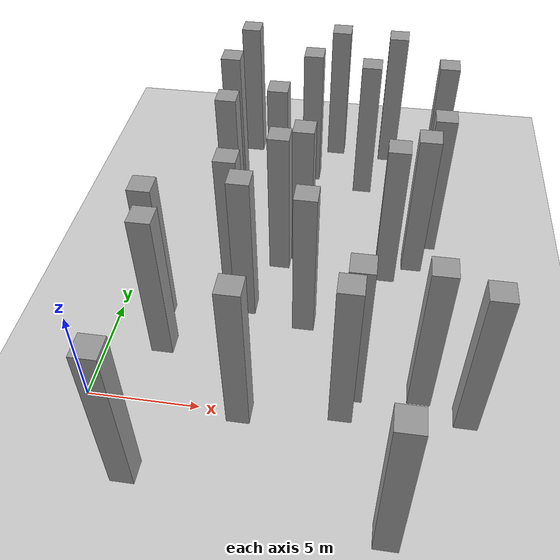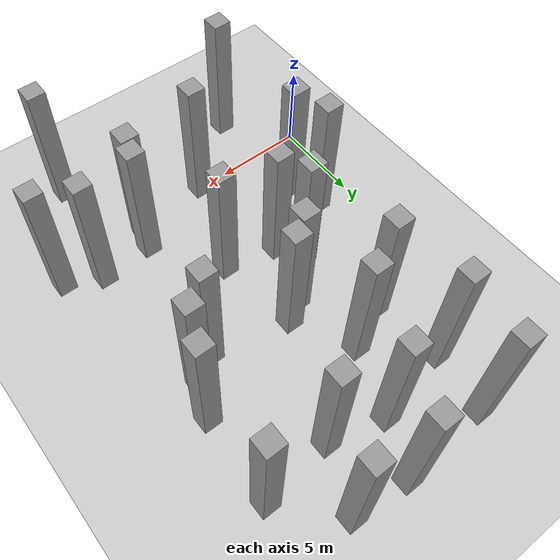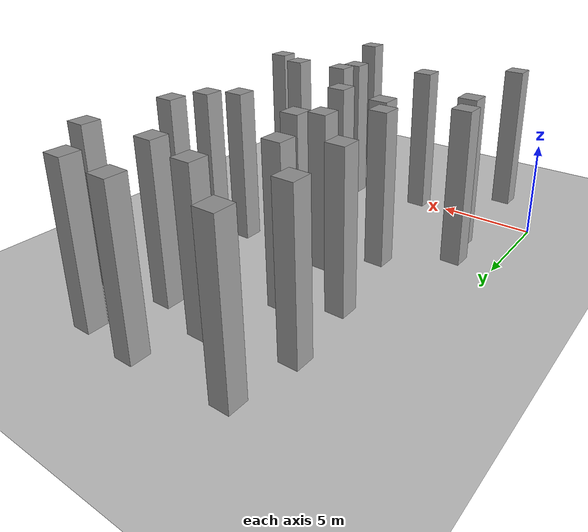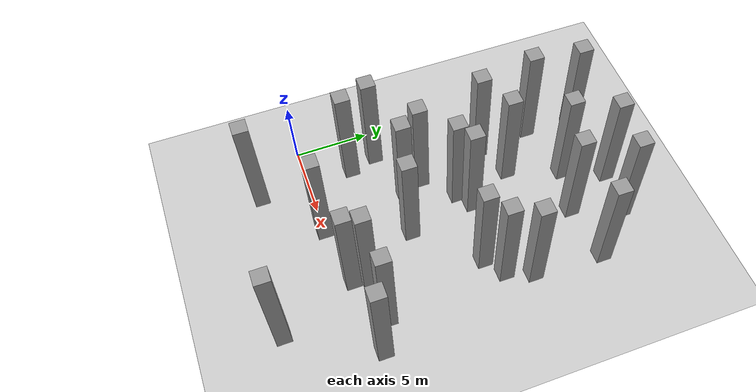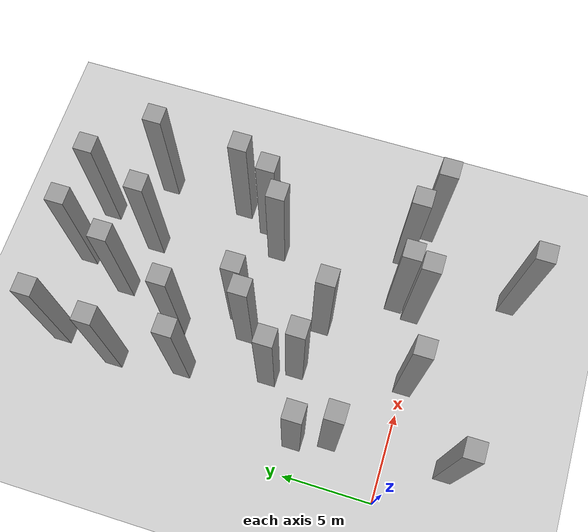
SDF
<sdf version="1.7">
 <world name="default">
  <model name="ground_plane">
   <static>1</static>
   <link name="link">
    <collision name="collision">
     <geometry><plane><normal>0 0 1</normal><size>100 100</size></plane></geometry>
     <surface>
      <contact><collide_bitmask>65535</collide_bitmask></contact>
      <friction><ode><mu>100</mu><mu2>50</mu2></ode></friction>
     </surface>
    </collision>
    <visual name="visual">
     <cast_shadows>0</cast_shadows>
     <geometry><plane><normal>0 0 1</normal><size>100 100</size></plane></geometry>
     <material>
      <script><uri>file://media/materials/scripts/gazebo.material</uri><name>Gazebo/Grey</name></script>
     </material>
    </visual>
   </link>
  </model>
  <model name="unit_box_static19">
   <link name="link">
    <inertial>
     <mass>1</mass>
     <inertia>
      <ixx>0.166667</ixx>
      <ixy>0</ixy>
      <ixz>0</ixz>
      <iyy>0.166667</iyy>
      <iyz>0</iyz>
      <izz>0.166667</izz>
     </inertia>
    </inertial>
    <visual name="visual">
     <geometry><box><size>1 1 8</size></box></geometry>
     <material>
      <script><name>Gazebo/Grey</name><uri>file://media/materials/scripts/gazebo.material</uri></script>
      <shader type="pixel"/>
     </material>
    </visual>
    <collision name="collision">
     <geometry><box><size>1 1 8</size></box></geometry>
     <surface>
      <friction>
       <ode><mu>1</mu><mu2>1</mu2><fdir1>0 0 0</fdir1><slip1>0</slip1><slip2>0</slip2></ode>
       <torsional>
        <coefficient>1</coefficient>
        <patch_radius>0</patch_radius>
        <surface_radius>0</surface_radius>
        <use_patch_radius>1</use_patch_radius>
        <ode><slip>0</slip></ode>
       </torsional>
      </friction>
      <bounce><restitution_coefficient>0</restitution_coefficient><threshold>1e+06</threshold></bounce>
      <contact>
       <collide_without_contact>0</collide_without_contact>
       <collide_without_contact_bitmask>1</collide_without_contact_bitmask>
       <collide_bitmask>1</collide_bitmask>
       <ode>
        <soft_cfm>0</soft_cfm>
        <soft_erp>0.2</soft_erp>
        <kp>1e+13</kp>
        <kd>1</kd>
        <max_vel>0.01</max_vel>
        <min_depth>0</min_depth>
       </ode>
       <bullet>
        <split_impulse>1</split_impulse>
        <split_impulse_penetration_threshold>-0.01</split_impulse_penetration_threshold>
        <soft_cfm>0</soft_cfm>
        <soft_erp>0.2</soft_erp>
        <kp>1e+13</kp>
        <kd>1</kd>
       </bullet>
      </contact>
     </surface>
    </collision>
   </link>
   <static>1</static>
   <pose>16.2659 1.03947 4 0 -0 0</pose>
  </model>
  <model name="unit_box_static27">
   <link name="link">
    <inertial>
     <mass>1</mass>
     <inertia>
      <ixx>0.166667</ixx>
      <ixy>0</ixy>
      <ixz>0</ixz>
      <iyy>0.166667</iyy>
      <iyz>0</iyz>
      <izz>0.166667</izz>
     </inertia>
    </inertial>
    <visual name="visual">
     <geometry><box><size>1 1 8</size></box></geometry>
     <material>
      <script><name>Gazebo/Grey</name><uri>file://media/materials/scripts/gazebo.material</uri></script>
      <shader type="pixel"/>
     </material>
    </visual>
    <collision name="collision">
     <geometry><box><size>1 1 8</size></box></geometry>
     <surface>
      <friction>
       <ode><mu>1</mu><mu2>1</mu2><fdir1>0 0 0</fdir1><slip1>0</slip1><slip2>0</slip2></ode>
       <torsional>
        <coefficient>1</coefficient>
        <patch_radius>0</patch_radius>
        <surface_radius>0</surface_radius>
        <use_patch_radius>1</use_patch_radius>
        <ode><slip>0</slip></ode>
       </torsional>
      </friction>
      <bounce><restitution_coefficient>0</restitution_coefficient><threshold>1e+06</threshold></bounce>
      <contact>
       <collide_without_contact>0</collide_without_contact>
       <collide_without_contact_bitmask>1</collide_without_contact_bitmask>
       <collide_bitmask>1</collide_bitmask>
       <ode>
        <soft_cfm>0</soft_cfm>
        <soft_erp>0.2</soft_erp>
        <kp>1e+13</kp>
        <kd>1</kd>
        <max_vel>0.01</max_vel>
        <min_depth>0</min_depth>
       </ode>
       <bullet>
        <split_impulse>1</split_impulse>
        <split_impulse_penetration_threshold>-0.01</split_impulse_penetration_threshold>
        <soft_cfm>0</soft_cfm>
        <soft_erp>0.2</soft_erp>
        <kp>1e+13</kp>
        <kd>1</kd>
       </bullet>
      </contact>
     </surface>
    </collision>
   </link>
   <static>1</static>
   <pose>6.49172 13.1997 4 0 -0 0</pose>
  </model>
  <model name="unit_box_static51">
   <link name="link">
    <inertial>
     <mass>1</mass>
     <inertia>
      <ixx>0.166667</ixx>
      <ixy>0</ixy>
      <ixz>0</ixz>
      <iyy>0.166667</iyy>
      <iyz>0</iyz>
      <izz>0.166667</izz>
     </inertia>
    </inertial>
    <visual name="visual">
     <geometry><box><size>1 1 8</size></box></geometry>
     <material>
      <script><name>Gazebo/Grey</name><uri>file://media/materials/scripts/gazebo.material</uri></script>
      <shader type="pixel"/>
     </material>
    </visual>
    <collision name="collision">
     <geometry><box><size>1 1 8</size></box></geometry>
     <surface>
      <friction>
       <ode><mu>1</mu><mu2>1</mu2><fdir1>0 0 0</fdir1><slip1>0</slip1><slip2>0</slip2></ode>
       <torsional>
        <coefficient>1</coefficient>
        <patch_radius>0</patch_radius>
        <surface_radius>0</surface_radius>
        <use_patch_radius>1</use_patch_radius>
        <ode><slip>0</slip></ode>
       </torsional>
      </friction>
      <bounce><restitution_coefficient>0</restitution_coefficient><threshold>1e+06</threshold></bounce>
      <contact>
       <collide_without_contact>0</collide_without_contact>
       <collide_without_contact_bitmask>1</collide_without_contact_bitmask>
       <collide_bitmask>1</collide_bitmask>
       <ode>
        <soft_cfm>0</soft_cfm>
        <soft_erp>0.2</soft_erp>
        <kp>1e+13</kp>
        <kd>1</kd>
        <max_vel>0.01</max_vel>
        <min_depth>0</min_depth>
       </ode>
       <bullet>
        <split_impulse>1</split_impulse>
        <split_impulse_penetration_threshold>-0.01</split_impulse_penetration_threshold>
        <soft_cfm>0</soft_cfm>
        <soft_erp>0.2</soft_erp>
        <kp>1e+13</kp>
        <kd>1</kd>
       </bullet>
      </contact>
     </surface>
    </collision>
   </link>
   <static>1</static>
   <pose>12.1846 19.2634 4 0 -0 0</pose>
  </model>
  <model name="unit_box_static53">
   <link name="link">
    <inertial>
     <mass>1</mass>
     <inertia>
      <ixx>0.166667</ixx>
      <ixy>0</ixy>
      <ixz>0</ixz>
      <iyy>0.166667</iyy>
      <iyz>0</iyz>
      <izz>0.166667</izz>
     </inertia>
    </inertial>
    <visual name="visual">
     <geometry><box><size>1 1 8</size></box></geometry>
     <material>
      <script><name>Gazebo/Grey</name><uri>file://media/materials/scripts/gazebo.material</uri></script>
      <shader type="pixel"/>
     </material>
    </visual>
    <collision name="collision">
     <geometry><box><size>1 1 8</size></box></geometry>
     <surface>
      <friction>
       <ode><mu>1</mu><mu2>1</mu2><fdir1>0 0 0</fdir1><slip1>0</slip1><slip2>0</slip2></ode>
       <torsional>
        <coefficient>1</coefficient>
        <patch_radius>0</patch_radius>
        <surface_radius>0</surface_radius>
        <use_patch_radius>1</use_patch_radius>
        <ode><slip>0</slip></ode>
       </torsional>
      </friction>
      <bounce><restitution_coefficient>0</restitution_coefficient><threshold>1e+06</threshold></bounce>
      <contact>
       <collide_without_contact>0</collide_without_contact>
       <collide_without_contact_bitmask>1</collide_without_contact_bitmask>
       <collide_bitmask>1</collide_bitmask>
       <ode>
        <soft_cfm>0</soft_cfm>
        <soft_erp>0.2</soft_erp>
        <kp>1e+13</kp>
        <kd>1</kd>
        <max_vel>0.01</max_vel>
        <min_depth>0</min_depth>
       </ode>
       <bullet>
        <split_impulse>1</split_impulse>
        <split_impulse_penetration_threshold>-0.01</split_impulse_penetration_threshold>
        <soft_cfm>0</soft_cfm>
        <soft_erp>0.2</soft_erp>
        <kp>1e+13</kp>
        <kd>1</kd>
       </bullet>
      </contact>
     </surface>
    </collision>
   </link>
   <static>1</static>
   <pose>5.94114 5.9923 4 0 -0 0</pose>
  </model>
  <model name="unit_box_static59">
   <link name="link">
    <inertial>
     <mass>1</mass>
     <inertia>
      <ixx>0.166667</ixx>
      <ixy>0</ixy>
      <ixz>0</ixz>
      <iyy>0.166667</iyy>
      <iyz>0</iyz>
      <izz>0.166667</izz>
     </inertia>
    </inertial>
    <visual name="visual">
     <geometry><box><size>1 1 8</size></box></geometry>
     <material>
      <script><name>Gazebo/Grey</name><uri>file://media/materials/scripts/gazebo.material</uri></script>
      <shader type="pixel"/>
     </material>
    </visual>
    <collision name="collision">
     <geometry><box><size>1 1 8</size></box></geometry>
     <surface>
      <friction>
       <ode><mu>1</mu><mu2>1</mu2><fdir1>0 0 0</fdir1><slip1>0</slip1><slip2>0</slip2></ode>
       <torsional>
        <coefficient>1</coefficient>
        <patch_radius>0</patch_radius>
        <surface_radius>0</surface_radius>
        <use_patch_radius>1</use_patch_radius>
        <ode><slip>0</slip></ode>
       </torsional>
      </friction>
      <bounce><restitution_coefficient>0</restitution_coefficient><threshold>1e+06</threshold></bounce>
      <contact>
       <collide_without_contact>0</collide_without_contact>
       <collide_without_contact_bitmask>1</collide_without_contact_bitmask>
       <collide_bitmask>1</collide_bitmask>
       <ode>
        <soft_cfm>0</soft_cfm>
        <soft_erp>0.2</soft_erp>
        <kp>1e+13</kp>
        <kd>1</kd>
        <max_vel>0.01</max_vel>
        <min_depth>0</min_depth>
       </ode>
       <bullet>
        <split_impulse>1</split_impulse>
        <split_impulse_penetration_threshold>-0.01</split_impulse_penetration_threshold>
        <soft_cfm>0</soft_cfm>
        <soft_erp>0.2</soft_erp>
        <kp>1e+13</kp>
        <kd>1</kd>
       </bullet>
      </contact>
     </surface>
    </collision>
   </link>
   <static>1</static>
   <pose>11.0233 0.653893 4 0 -0 0</pose>
  </model>
  <model name="unit_box_static73">
   <link name="link">
    <inertial>
     <mass>1</mass>
     <inertia>
      <ixx>0.166667</ixx>
      <ixy>0</ixy>
      <ixz>0</ixz>
      <iyy>0.166667</iyy>
      <iyz>0</iyz>
      <izz>0.166667</izz>
     </inertia>
    </inertial>
    <visual name="visual">
     <geometry><box><size>1 1 8</size></box></geometry>
     <material>
      <script><name>Gazebo/Grey</name><uri>file://media/materials/scripts/gazebo.material</uri></script>
      <shader type="pixel"/>
     </material>
    </visual>
    <collision name="collision">
     <geometry><box><size>1 1 8</size></box></geometry>
     <surface>
      <friction>
       <ode><mu>1</mu><mu2>1</mu2><fdir1>0 0 0</fdir1><slip1>0</slip1><slip2>0</slip2></ode>
       <torsional>
        <coefficient>1</coefficient>
        <patch_radius>0</patch_radius>
        <surface_radius>0</surface_radius>
        <use_patch_radius>1</use_patch_radius>
        <ode><slip>0</slip></ode>
       </torsional>
      </friction>
      <bounce><restitution_coefficient>0</restitution_coefficient><threshold>1e+06</threshold></bounce>
      <contact>
       <collide_without_contact>0</collide_without_contact>
       <collide_without_contact_bitmask>1</collide_without_contact_bitmask>
       <collide_bitmask>1</collide_bitmask>
       <ode>
        <soft_cfm>0</soft_cfm>
        <soft_erp>0.2</soft_erp>
        <kp>1e+13</kp>
        <kd>1</kd>
        <max_vel>0.01</max_vel>
        <min_depth>0</min_depth>
       </ode>
       <bullet>
        <split_impulse>1</split_impulse>
        <split_impulse_penetration_threshold>-0.01</split_impulse_penetration_threshold>
        <soft_cfm>0</soft_cfm>
        <soft_erp>0.2</soft_erp>
        <kp>1e+13</kp>
        <kd>1</kd>
       </bullet>
      </contact>
     </surface>
    </collision>
   </link>
   <static>1</static>
   <pose>14.3034 1.95691 4 0 -0 0</pose>
  </model>
  <model name="unit_box_static78">
   <link name="link">
    <inertial>
     <mass>1</mass>
     <inertia>
      <ixx>0.166667</ixx>
      <ixy>0</ixy>
      <ixz>0</ixz>
      <iyy>0.166667</iyy>
      <iyz>0</iyz>
      <izz>0.166667</izz>
     </inertia>
    </inertial>
    <visual name="visual">
     <geometry><box><size>1 1 8</size></box></geometry>
     <material>
      <script><name>Gazebo/Grey</name><uri>file://media/materials/scripts/gazebo.material</uri></script>
      <shader type="pixel"/>
     </material>
    </visual>
    <collision name="collision">
     <geometry><box><size>1 1 8</size></box></geometry>
     <surface>
      <friction>
       <ode><mu>1</mu><mu2>1</mu2><fdir1>0 0 0</fdir1><slip1>0</slip1><slip2>0</slip2></ode>
       <torsional>
        <coefficient>1</coefficient>
        <patch_radius>0</patch_radius>
        <surface_radius>0</surface_radius>
        <use_patch_radius>1</use_patch_radius>
        <ode><slip>0</slip></ode>
       </torsional>
      </friction>
      <bounce><restitution_coefficient>0</restitution_coefficient><threshold>1e+06</threshold></bounce>
      <contact>
       <collide_without_contact>0</collide_without_contact>
       <collide_without_contact_bitmask>1</collide_without_contact_bitmask>
       <collide_bitmask>1</collide_bitmask>
       <ode>
        <soft_cfm>0</soft_cfm>
        <soft_erp>0.2</soft_erp>
        <kp>1e+13</kp>
        <kd>1</kd>
        <max_vel>0.01</max_vel>
        <min_depth>0</min_depth>
       </ode>
       <bullet>
        <split_impulse>1</split_impulse>
        <split_impulse_penetration_threshold>-0.01</split_impulse_penetration_threshold>
        <soft_cfm>0</soft_cfm>
        <soft_erp>0.2</soft_erp>
        <kp>1e+13</kp>
        <kd>1</kd>
       </bullet>
      </contact>
     </surface>
    </collision>
   </link>
   <static>1</static>
   <pose>4.15709 12.0635 4 0 -0 0</pose>
  </model>
  <model name="unit_box_static81">
   <link name="link">
    <inertial>
     <mass>1</mass>
     <inertia>
      <ixx>0.166667</ixx>
      <ixy>0</ixy>
      <ixz>0</ixz>
      <iyy>0.166667</iyy>
      <iyz>0</iyz>
      <izz>0.166667</izz>
     </inertia>
    </inertial>
    <visual name="visual">
     <geometry><box><size>1 1 8</size></box></geometry>
     <material>
      <script><name>Gazebo/Grey</name><uri>file://media/materials/scripts/gazebo.material</uri></script>
      <shader type="pixel"/>
     </material>
    </visual>
    <collision name="collision">
     <geometry><box><size>1 1 8</size></box></geometry>
     <surface>
      <friction>
       <ode><mu>1</mu><mu2>1</mu2><fdir1>0 0 0</fdir1><slip1>0</slip1><slip2>0</slip2></ode>
       <torsional>
        <coefficient>1</coefficient>
        <patch_radius>0</patch_radius>
        <surface_radius>0</surface_radius>
        <use_patch_radius>1</use_patch_radius>
        <ode><slip>0</slip></ode>
       </torsional>
      </friction>
      <bounce><restitution_coefficient>0</restitution_coefficient><threshold>1e+06</threshold></bounce>
      <contact>
       <collide_without_contact>0</collide_without_contact>
       <collide_without_contact_bitmask>1</collide_without_contact_bitmask>
       <collide_bitmask>1</collide_bitmask>
       <ode>
        <soft_cfm>0</soft_cfm>
        <soft_erp>0.2</soft_erp>
        <kp>1e+13</kp>
        <kd>1</kd>
        <max_vel>0.01</max_vel>
        <min_depth>0</min_depth>
       </ode>
       <bullet>
        <split_impulse>1</split_impulse>
        <split_impulse_penetration_threshold>-0.01</split_impulse_penetration_threshold>
        <soft_cfm>0</soft_cfm>
        <soft_erp>0.2</soft_erp>
        <kp>1e+13</kp>
        <kd>1</kd>
       </bullet>
      </contact>
     </surface>
    </collision>
   </link>
   <static>1</static>
   <pose>6.76678 -0.001473 4 0 -0 0</pose>
  </model>
  <model name="unit_box_static85">
   <link name="link">
    <inertial>
     <mass>1</mass>
     <inertia>
      <ixx>0.166667</ixx>
      <ixy>0</ixy>
      <ixz>0</ixz>
      <iyy>0.166667</iyy>
      <iyz>0</iyz>
      <izz>0.166667</izz>
     </inertia>
    </inertial>
    <visual name="visual">
     <geometry><box><size>1 1 8</size></box></geometry>
     <material>
      <script><name>Gazebo/Grey</name><uri>file://media/materials/scripts/gazebo.material</uri></script>
      <shader type="pixel"/>
     </material>
    </visual>
    <collision name="collision">
     <geometry><box><size>1 1 8</size></box></geometry>
     <surface>
      <friction>
       <ode><mu>1</mu><mu2>1</mu2><fdir1>0 0 0</fdir1><slip1>0</slip1><slip2>0</slip2></ode>
       <torsional>
        <coefficient>1</coefficient>
        <patch_radius>0</patch_radius>
        <surface_radius>0</surface_radius>
        <use_patch_radius>1</use_patch_radius>
        <ode><slip>0</slip></ode>
       </torsional>
      </friction>
      <bounce><restitution_coefficient>0</restitution_coefficient><threshold>1e+06</threshold></bounce>
      <contact>
       <collide_without_contact>0</collide_without_contact>
       <collide_without_contact_bitmask>1</collide_without_contact_bitmask>
       <collide_bitmask>1</collide_bitmask>
       <ode>
        <soft_cfm>0</soft_cfm>
        <soft_erp>0.2</soft_erp>
        <kp>1e+13</kp>
        <kd>1</kd>
        <max_vel>0.01</max_vel>
        <min_depth>0</min_depth>
       </ode>
       <bullet>
        <split_impulse>1</split_impulse>
        <split_impulse_penetration_threshold>-0.01</split_impulse_penetration_threshold>
        <soft_cfm>0</soft_cfm>
        <soft_erp>0.2</soft_erp>
        <kp>1e+13</kp>
        <kd>1</kd>
       </bullet>
      </contact>
     </surface>
    </collision>
   </link>
   <static>1</static>
   <pose>10.9016 16.0346 4 0 -0 0</pose>
  </model>
  <model name="unit_box_static91">
   <link name="link">
    <inertial>
     <mass>1</mass>
     <inertia>
      <ixx>0.166667</ixx>
      <ixy>0</ixy>
      <ixz>0</ixz>
      <iyy>0.166667</iyy>
      <iyz>0</iyz>
      <izz>0.166667</izz>
     </inertia>
    </inertial>
    <visual name="visual">
     <geometry><box><size>1 1 8</size></box></geometry>
     <material>
      <script><name>Gazebo/Grey</name><uri>file://media/materials/scripts/gazebo.material</uri></script>
      <shader type="pixel"/>
     </material>
    </visual>
    <collision name="collision">
     <geometry><box><size>1 1 8</size></box></geometry>
     <surface>
      <friction>
       <ode><mu>1</mu><mu2>1</mu2><fdir1>0 0 0</fdir1><slip1>0</slip1><slip2>0</slip2></ode>
       <torsional>
        <coefficient>1</coefficient>
        <patch_radius>0</patch_radius>
        <surface_radius>0</surface_radius>
        <use_patch_radius>1</use_patch_radius>
        <ode><slip>0</slip></ode>
       </torsional>
      </friction>
      <bounce><restitution_coefficient>0</restitution_coefficient><threshold>1e+06</threshold></bounce>
      <contact>
       <collide_without_contact>0</collide_without_contact>
       <collide_without_contact_bitmask>1</collide_without_contact_bitmask>
       <collide_bitmask>1</collide_bitmask>
       <ode>
        <soft_cfm>0</soft_cfm>
        <soft_erp>0.2</soft_erp>
        <kp>1e+13</kp>
        <kd>1</kd>
        <max_vel>0.01</max_vel>
        <min_depth>0</min_depth>
       </ode>
       <bullet>
        <split_impulse>1</split_impulse>
        <split_impulse_penetration_threshold>-0.01</split_impulse_penetration_threshold>
        <soft_cfm>0</soft_cfm>
        <soft_erp>0.2</soft_erp>
        <kp>1e+13</kp>
        <kd>1</kd>
       </bullet>
      </contact>
     </surface>
    </collision>
   </link>
   <static>1</static>
   <pose>11.3689 1.71268 4 0 -0 0</pose>
  </model>
  <model name="unit_box_static96">
   <link name="link">
    <inertial>
     <mass>1</mass>
     <inertia>
      <ixx>0.166667</ixx>
      <ixy>0</ixy>
      <ixz>0</ixz>
      <iyy>0.166667</iyy>
      <iyz>0</iyz>
      <izz>0.166667</izz>
     </inertia>
    </inertial>
    <visual name="visual">
     <geometry><box><size>1 1 8</size></box></geometry>
     <material>
      <script><name>Gazebo/Grey</name><uri>file://media/materials/scripts/gazebo.material</uri></script>
      <shader type="pixel"/>
     </material>
    </visual>
    <collision name="collision">
     <geometry><box><size>1 1 8</size></box></geometry>
     <surface>
      <friction>
       <ode><mu>1</mu><mu2>1</mu2><fdir1>0 0 0</fdir1><slip1>0</slip1><slip2>0</slip2></ode>
       <torsional>
        <coefficient>1</coefficient>
        <patch_radius>0</patch_radius>
        <surface_radius>0</surface_radius>
        <use_patch_radius>1</use_patch_radius>
        <ode><slip>0</slip></ode>
       </torsional>
      </friction>
      <bounce><restitution_coefficient>0</restitution_coefficient><threshold>1e+06</threshold></bounce>
      <contact>
       <collide_without_contact>0</collide_without_contact>
       <collide_without_contact_bitmask>1</collide_without_contact_bitmask>
       <collide_bitmask>1</collide_bitmask>
       <ode>
        <soft_cfm>0</soft_cfm>
        <soft_erp>0.2</soft_erp>
        <kp>1e+13</kp>
        <kd>1</kd>
        <max_vel>0.01</max_vel>
        <min_depth>0</min_depth>
       </ode>
       <bullet>
        <split_impulse>1</split_impulse>
        <split_impulse_penetration_threshold>-0.01</split_impulse_penetration_threshold>
        <soft_cfm>0</soft_cfm>
        <soft_erp>0.2</soft_erp>
        <kp>1e+13</kp>
        <kd>1</kd>
       </bullet>
      </contact>
     </surface>
    </collision>
   </link>
   <static>1</static>
   <pose>9.07796 19.543 4 0 -0 0</pose>
  </model>
  <model name="unit_box_static97">
   <link name="link">
    <inertial>
     <mass>1</mass>
     <inertia>
      <ixx>0.166667</ixx>
      <ixy>0</ixy>
      <ixz>0</ixz>
      <iyy>0.166667</iyy>
      <iyz>0</iyz>
      <izz>0.166667</izz>
     </inertia>
    </inertial>
    <visual name="visual">
     <geometry><box><size>1 1 8</size></box></geometry>
     <material>
      <script><name>Gazebo/Grey</name><uri>file://media/materials/scripts/gazebo.material</uri></script>
      <shader type="pixel"/>
     </material>
    </visual>
    <collision name="collision">
     <geometry><box><size>1 1 8</size></box></geometry>
     <surface>
      <friction>
       <ode><mu>1</mu><mu2>1</mu2><fdir1>0 0 0</fdir1><slip1>0</slip1><slip2>0</slip2></ode>
       <torsional>
        <coefficient>1</coefficient>
        <patch_radius>0</patch_radius>
        <surface_radius>0</surface_radius>
        <use_patch_radius>1</use_patch_radius>
        <ode><slip>0</slip></ode>
       </torsional>
      </friction>
      <bounce><restitution_coefficient>0</restitution_coefficient><threshold>1e+06</threshold></bounce>
      <contact>
       <collide_without_contact>0</collide_without_contact>
       <collide_without_contact_bitmask>1</collide_without_contact_bitmask>
       <collide_bitmask>1</collide_bitmask>
       <ode>
        <soft_cfm>0</soft_cfm>
        <soft_erp>0.2</soft_erp>
        <kp>1e+13</kp>
        <kd>1</kd>
        <max_vel>0.01</max_vel>
        <min_depth>0</min_depth>
       </ode>
       <bullet>
        <split_impulse>1</split_impulse>
        <split_impulse_penetration_threshold>-0.01</split_impulse_penetration_threshold>
        <soft_cfm>0</soft_cfm>
        <soft_erp>0.2</soft_erp>
        <kp>1e+13</kp>
        <kd>1</kd>
       </bullet>
      </contact>
     </surface>
    </collision>
   </link>
   <static>1</static>
   <pose>5.08949 7.37291 4 0 -0 0</pose>
  </model>
  <model name="unit_box_static98">
   <link name="link">
    <inertial>
     <mass>1</mass>
     <inertia>
      <ixx>0.166667</ixx>
      <ixy>0</ixy>
      <ixz>0</ixz>
      <iyy>0.166667</iyy>
      <iyz>0</iyz>
      <izz>0.166667</izz>
     </inertia>
    </inertial>
    <visual name="visual">
     <geometry><box><size>1 1 8</size></box></geometry>
     <material>
      <script><name>Gazebo/Grey</name><uri>file://media/materials/scripts/gazebo.material</uri></script>
      <shader type="pixel"/>
     </material>
    </visual>
    <collision name="collision">
     <geometry><box><size>1 1 8</size></box></geometry>
     <surface>
      <friction>
       <ode><mu>1</mu><mu2>1</mu2><fdir1>0 0 0</fdir1><slip1>0</slip1><slip2>0</slip2></ode>
       <torsional>
        <coefficient>1</coefficient>
        <patch_radius>0</patch_radius>
        <surface_radius>0</surface_radius>
        <use_patch_radius>1</use_patch_radius>
        <ode><slip>0</slip></ode>
       </torsional>
      </friction>
      <bounce><restitution_coefficient>0</restitution_coefficient><threshold>1e+06</threshold></bounce>
      <contact>
       <collide_without_contact>0</collide_without_contact>
       <collide_without_contact_bitmask>1</collide_without_contact_bitmask>
       <collide_bitmask>1</collide_bitmask>
       <ode>
        <soft_cfm>0</soft_cfm>
        <soft_erp>0.2</soft_erp>
        <kp>1e+13</kp>
        <kd>1</kd>
        <max_vel>0.01</max_vel>
        <min_depth>0</min_depth>
       </ode>
       <bullet>
        <split_impulse>1</split_impulse>
        <split_impulse_penetration_threshold>-0.01</split_impulse_penetration_threshold>
        <soft_cfm>0</soft_cfm>
        <soft_erp>0.2</soft_erp>
        <kp>1e+13</kp>
        <kd>1</kd>
       </bullet>
      </contact>
     </surface>
    </collision>
   </link>
   <static>1</static>
   <pose>13.8326 10.0137 4 0 -0 0</pose>
  </model>
  <model name="unit_box_static101">
   <link name="link">
    <inertial>
     <mass>1</mass>
     <inertia>
      <ixx>0.166667</ixx>
      <ixy>0</ixy>
      <ixz>0</ixz>
      <iyy>0.166667</iyy>
      <iyz>0</iyz>
      <izz>0.166667</izz>
     </inertia>
    </inertial>
    <visual name="visual">
     <geometry><box><size>1 1 8</size></box></geometry>
     <material>
      <script><name>Gazebo/Grey</name><uri>file://media/materials/scripts/gazebo.material</uri></script>
      <shader type="pixel"/>
     </material>
    </visual>
    <collision name="collision">
     <geometry><box><size>1 1 8</size></box></geometry>
     <surface>
      <friction>
       <ode><mu>1</mu><mu2>1</mu2><fdir1>0 0 0</fdir1><slip1>0</slip1><slip2>0</slip2></ode>
       <torsional>
        <coefficient>1</coefficient>
        <patch_radius>0</patch_radius>
        <surface_radius>0</surface_radius>
        <use_patch_radius>1</use_patch_radius>
        <ode><slip>0</slip></ode>
       </torsional>
      </friction>
      <bounce><restitution_coefficient>0</restitution_coefficient><threshold>1e+06</threshold></bounce>
      <contact>
       <collide_without_contact>0</collide_without_contact>
       <collide_without_contact_bitmask>1</collide_without_contact_bitmask>
       <collide_bitmask>1</collide_bitmask>
       <ode>
        <soft_cfm>0</soft_cfm>
        <soft_erp>0.2</soft_erp>
        <kp>1e+13</kp>
        <kd>1</kd>
        <max_vel>0.01</max_vel>
        <min_depth>0</min_depth>
       </ode>
       <bullet>
        <split_impulse>1</split_impulse>
        <split_impulse_penetration_threshold>-0.01</split_impulse_penetration_threshold>
        <soft_cfm>0</soft_cfm>
        <soft_erp>0.2</soft_erp>
        <kp>1e+13</kp>
        <kd>1</kd>
       </bullet>
      </contact>
     </surface>
    </collision>
   </link>
   <static>1</static>
   <pose>2.60868 3.15029 4 0 -0 0</pose>
  </model>
  <model name="unit_box_static104">
   <link name="link">
    <inertial>
     <mass>1</mass>
     <inertia>
      <ixx>0.166667</ixx>
      <ixy>0</ixy>
      <ixz>0</ixz>
      <iyy>0.166667</iyy>
      <iyz>0</iyz>
      <izz>0.166667</izz>
     </inertia>
    </inertial>
    <visual name="visual">
     <geometry><box><size>1 1 8</size></box></geometry>
     <material>
      <script><name>Gazebo/Grey</name><uri>file://media/materials/scripts/gazebo.material</uri></script>
      <shader type="pixel"/>
     </material>
    </visual>
    <collision name="collision">
     <geometry><box><size>1 1 8</size></box></geometry>
     <surface>
      <friction>
       <ode><mu>1</mu><mu2>1</mu2><fdir1>0 0 0</fdir1><slip1>0</slip1><slip2>0</slip2></ode>
       <torsional>
        <coefficient>1</coefficient>
        <patch_radius>0</patch_radius>
        <surface_radius>0</surface_radius>
        <use_patch_radius>1</use_patch_radius>
        <ode><slip>0</slip></ode>
       </torsional>
      </friction>
      <bounce><restitution_coefficient>0</restitution_coefficient><threshold>1e+06</threshold></bounce>
      <contact>
       <collide_without_contact>0</collide_without_contact>
       <collide_without_contact_bitmask>1</collide_without_contact_bitmask>
       <collide_bitmask>1</collide_bitmask>
       <ode>
        <soft_cfm>0</soft_cfm>
        <soft_erp>0.2</soft_erp>
        <kp>1e+13</kp>
        <kd>1</kd>
        <max_vel>0.01</max_vel>
        <min_depth>0</min_depth>
       </ode>
       <bullet>
        <split_impulse>1</split_impulse>
        <split_impulse_penetration_threshold>-0.01</split_impulse_penetration_threshold>
        <soft_cfm>0</soft_cfm>
        <soft_erp>0.2</soft_erp>
        <kp>1e+13</kp>
        <kd>1</kd>
       </bullet>
      </contact>
     </surface>
    </collision>
   </link>
   <static>1</static>
   <pose>13.1653 -4.50829 4 0 -0 0</pose>
  </model>
  <model name="unit_box_static105">
   <link name="link">
    <inertial>
     <mass>1</mass>
     <inertia>
      <ixx>0.166667</ixx>
      <ixy>0</ixy>
      <ixz>0</ixz>
      <iyy>0.166667</iyy>
      <iyz>0</iyz>
      <izz>0.166667</izz>
     </inertia>
    </inertial>
    <visual name="visual">
     <geometry><box><size>1 1 8</size></box></geometry>
     <material>
      <script><name>Gazebo/Grey</name><uri>file://media/materials/scripts/gazebo.material</uri></script>
      <shader type="pixel"/>
     </material>
    </visual>
    <collision name="collision">
     <geometry><box><size>1 1 8</size></box></geometry>
     <surface>
      <friction>
       <ode><mu>1</mu><mu2>1</mu2><fdir1>0 0 0</fdir1><slip1>0</slip1><slip2>0</slip2></ode>
       <torsional>
        <coefficient>1</coefficient>
        <patch_radius>0</patch_radius>
        <surface_radius>0</surface_radius>
        <use_patch_radius>1</use_patch_radius>
        <ode><slip>0</slip></ode>
       </torsional>
      </friction>
      <bounce><restitution_coefficient>0</restitution_coefficient><threshold>1e+06</threshold></bounce>
      <contact>
       <collide_without_contact>0</collide_without_contact>
       <collide_without_contact_bitmask>1</collide_without_contact_bitmask>
       <collide_bitmask>1</collide_bitmask>
       <ode>
        <soft_cfm>0</soft_cfm>
        <soft_erp>0.2</soft_erp>
        <kp>1e+13</kp>
        <kd>1</kd>
        <max_vel>0.01</max_vel>
        <min_depth>0</min_depth>
       </ode>
       <bullet>
        <split_impulse>1</split_impulse>
        <split_impulse_penetration_threshold>-0.01</split_impulse_penetration_threshold>
        <soft_cfm>0</soft_cfm>
        <soft_erp>0.2</soft_erp>
        <kp>1e+13</kp>
        <kd>1</kd>
       </bullet>
      </contact>
     </surface>
    </collision>
   </link>
   <static>1</static>
   <pose>7.12525 9.28684 4 0 -0 0</pose>
  </model>
  <model name="unit_box_static127">
   <link name="link">
    <inertial>
     <mass>1</mass>
     <inertia>
      <ixx>0.166667</ixx>
      <ixy>0</ixy>
      <ixz>0</ixz>
      <iyy>0.166667</iyy>
      <iyz>0</iyz>
      <izz>0.166667</izz>
     </inertia>
    </inertial>
    <visual name="visual">
     <geometry><box><size>1 1 8</size></box></geometry>
     <material>
      <script><name>Gazebo/Grey</name><uri>file://media/materials/scripts/gazebo.material</uri></script>
      <shader type="pixel"/>
     </material>
    </visual>
    <collision name="collision">
     <geometry><box><size>1 1 8</size></box></geometry>
     <surface>
      <friction>
       <ode><mu>1</mu><mu2>1</mu2><fdir1>0 0 0</fdir1><slip1>0</slip1><slip2>0</slip2></ode>
       <torsional>
        <coefficient>1</coefficient>
        <patch_radius>0</patch_radius>
        <surface_radius>0</surface_radius>
        <use_patch_radius>1</use_patch_radius>
        <ode><slip>0</slip></ode>
       </torsional>
      </friction>
      <bounce><restitution_coefficient>0</restitution_coefficient><threshold>1e+06</threshold></bounce>
      <contact>
       <collide_without_contact>0</collide_without_contact>
       <collide_without_contact_bitmask>1</collide_without_contact_bitmask>
       <collide_bitmask>1</collide_bitmask>
       <ode>
        <soft_cfm>0</soft_cfm>
        <soft_erp>0.2</soft_erp>
        <kp>1e+13</kp>
        <kd>1</kd>
        <max_vel>0.01</max_vel>
        <min_depth>0</min_depth>
       </ode>
       <bullet>
        <split_impulse>1</split_impulse>
        <split_impulse_penetration_threshold>-0.01</split_impulse_penetration_threshold>
        <soft_cfm>0</soft_cfm>
        <soft_erp>0.2</soft_erp>
        <kp>1e+13</kp>
        <kd>1</kd>
       </bullet>
      </contact>
     </surface>
    </collision>
   </link>
   <static>1</static>
   <pose>8.17156 9.99618 4 0 -0 0</pose>
  </model>
  <model name="unit_box_static129">
   <link name="link">
    <inertial>
     <mass>1</mass>
     <inertia>
      <ixx>0.166667</ixx>
      <ixy>0</ixy>
      <ixz>0</ixz>
      <iyy>0.166667</iyy>
      <iyz>0</iyz>
      <izz>0.166667</izz>
     </inertia>
    </inertial>
    <visual name="visual">
     <geometry><box><size>1 1 8</size></box></geometry>
     <material>
      <script><name>Gazebo/Grey</name><uri>file://media/materials/scripts/gazebo.material</uri></script>
      <shader type="pixel"/>
     </material>
    </visual>
    <collision name="collision">
     <geometry><box><size>1 1 8</size></box></geometry>
     <surface>
      <friction>
       <ode><mu>1</mu><mu2>1</mu2><fdir1>0 0 0</fdir1><slip1>0</slip1><slip2>0</slip2></ode>
       <torsional>
        <coefficient>1</coefficient>
        <patch_radius>0</patch_radius>
        <surface_radius>0</surface_radius>
        <use_patch_radius>1</use_patch_radius>
        <ode><slip>0</slip></ode>
       </torsional>
      </friction>
      <bounce><restitution_coefficient>0</restitution_coefficient><threshold>1e+06</threshold></bounce>
      <contact>
       <collide_without_contact>0</collide_without_contact>
       <collide_without_contact_bitmask>1</collide_without_contact_bitmask>
       <collide_bitmask>1</collide_bitmask>
       <ode>
        <soft_cfm>0</soft_cfm>
        <soft_erp>0.2</soft_erp>
        <kp>1e+13</kp>
        <kd>1</kd>
        <max_vel>0.01</max_vel>
        <min_depth>0</min_depth>
       </ode>
       <bullet>
        <split_impulse>1</split_impulse>
        <split_impulse_penetration_threshold>-0.01</split_impulse_penetration_threshold>
        <soft_cfm>0</soft_cfm>
        <soft_erp>0.2</soft_erp>
        <kp>1e+13</kp>
        <kd>1</kd>
       </bullet>
      </contact>
     </surface>
    </collision>
   </link>
   <static>1</static>
   <pose>3.62313 15.9289 4 0 -0 0</pose>
  </model>
  <model name="unit_box_static132">
   <link name="link">
    <inertial>
     <mass>1</mass>
     <inertia>
      <ixx>0.166667</ixx>
      <ixy>0</ixy>
      <ixz>0</ixz>
      <iyy>0.166667</iyy>
      <iyz>0</iyz>
      <izz>0.166667</izz>
     </inertia>
    </inertial>
    <visual name="visual">
     <geometry><box><size>1 1 8</size></box></geometry>
     <material>
      <script><name>Gazebo/Grey</name><uri>file://media/materials/scripts/gazebo.material</uri></script>
      <shader type="pixel"/>
     </material>
    </visual>
    <collision name="collision">
     <geometry><box><size>1 1 8</size></box></geometry>
     <surface>
      <friction>
       <ode><mu>1</mu><mu2>1</mu2><fdir1>0 0 0</fdir1><slip1>0</slip1><slip2>0</slip2></ode>
       <torsional>
        <coefficient>1</coefficient>
        <patch_radius>0</patch_radius>
        <surface_radius>0</surface_radius>
        <use_patch_radius>1</use_patch_radius>
        <ode><slip>0</slip></ode>
       </torsional>
      </friction>
      <bounce><restitution_coefficient>0</restitution_coefficient><threshold>1e+06</threshold></bounce>
      <contact>
       <collide_without_contact>0</collide_without_contact>
       <collide_without_contact_bitmask>1</collide_without_contact_bitmask>
       <collide_bitmask>1</collide_bitmask>
       <ode>
        <soft_cfm>0</soft_cfm>
        <soft_erp>0.2</soft_erp>
        <kp>1e+13</kp>
        <kd>1</kd>
        <max_vel>0.01</max_vel>
        <min_depth>0</min_depth>
       </ode>
       <bullet>
        <split_impulse>1</split_impulse>
        <split_impulse_penetration_threshold>-0.01</split_impulse_penetration_threshold>
        <soft_cfm>0</soft_cfm>
        <soft_erp>0.2</soft_erp>
        <kp>1e+13</kp>
        <kd>1</kd>
       </bullet>
      </contact>
     </surface>
    </collision>
   </link>
   <static>1</static>
   <pose>7.8496 16.7908 4 0 -0 0</pose>
  </model>
  <model name="unit_box_static135">
   <link name="link">
    <inertial>
     <mass>1</mass>
     <inertia>
      <ixx>0.166667</ixx>
      <ixy>0</ixy>
      <ixz>0</ixz>
      <iyy>0.166667</iyy>
      <iyz>0</iyz>
      <izz>0.166667</izz>
     </inertia>
    </inertial>
    <visual name="visual">
     <geometry><box><size>1 1 8</size></box></geometry>
     <material>
      <script><name>Gazebo/Grey</name><uri>file://media/materials/scripts/gazebo.material</uri></script>
      <shader type="pixel"/>
     </material>
    </visual>
    <collision name="collision">
     <geometry><box><size>1 1 8</size></box></geometry>
     <surface>
      <friction>
       <ode><mu>1</mu><mu2>1</mu2><fdir1>0 0 0</fdir1><slip1>0</slip1><slip2>0</slip2></ode>
       <torsional>
        <coefficient>1</coefficient>
        <patch_radius>0</patch_radius>
        <surface_radius>0</surface_radius>
        <use_patch_radius>1</use_patch_radius>
        <ode><slip>0</slip></ode>
       </torsional>
      </friction>
      <bounce><restitution_coefficient>0</restitution_coefficient><threshold>1e+06</threshold></bounce>
      <contact>
       <collide_without_contact>0</collide_without_contact>
       <collide_without_contact_bitmask>1</collide_without_contact_bitmask>
       <collide_bitmask>1</collide_bitmask>
       <ode>
        <soft_cfm>0</soft_cfm>
        <soft_erp>0.2</soft_erp>
        <kp>1e+13</kp>
        <kd>1</kd>
        <max_vel>0.01</max_vel>
        <min_depth>0</min_depth>
       </ode>
       <bullet>
        <split_impulse>1</split_impulse>
        <split_impulse_penetration_threshold>-0.01</split_impulse_penetration_threshold>
        <soft_cfm>0</soft_cfm>
        <soft_erp>0.2</soft_erp>
        <kp>1e+13</kp>
        <kd>1</kd>
       </bullet>
      </contact>
     </surface>
    </collision>
   </link>
   <static>1</static>
   <pose>4.10732 19.2168 4 0 -0 0</pose>
  </model>
  <model name="unit_box_static142">
   <link name="link">
    <inertial>
     <mass>1</mass>
     <inertia>
      <ixx>0.166667</ixx>
      <ixy>0</ixy>
      <ixz>0</ixz>
      <iyy>0.166667</iyy>
      <iyz>0</iyz>
      <izz>0.166667</izz>
     </inertia>
    </inertial>
    <visual name="visual">
     <geometry><box><size>1 1 8</size></box></geometry>
     <material>
      <script><name>Gazebo/Grey</name><uri>file://media/materials/scripts/gazebo.material</uri></script>
      <shader type="pixel"/>
     </material>
    </visual>
    <collision name="collision">
     <geometry><box><size>1 1 8</size></box></geometry>
     <surface>
      <friction>
       <ode><mu>1</mu><mu2>1</mu2><fdir1>0 0 0</fdir1><slip1>0</slip1><slip2>0</slip2></ode>
       <torsional>
        <coefficient>1</coefficient>
        <patch_radius>0</patch_radius>
        <surface_radius>0</surface_radius>
        <use_patch_radius>1</use_patch_radius>
        <ode><slip>0</slip></ode>
       </torsional>
      </friction>
      <bounce><restitution_coefficient>0</restitution_coefficient><threshold>1e+06</threshold></bounce>
      <contact>
       <collide_without_contact>0</collide_without_contact>
       <collide_without_contact_bitmask>1</collide_without_contact_bitmask>
       <collide_bitmask>1</collide_bitmask>
       <ode>
        <soft_cfm>0</soft_cfm>
        <soft_erp>0.2</soft_erp>
        <kp>1e+13</kp>
        <kd>1</kd>
        <max_vel>0.01</max_vel>
        <min_depth>0</min_depth>
       </ode>
       <bullet>
        <split_impulse>1</split_impulse>
        <split_impulse_penetration_threshold>-0.01</split_impulse_penetration_threshold>
        <soft_cfm>0</soft_cfm>
        <soft_erp>0.2</soft_erp>
        <kp>1e+13</kp>
        <kd>1</kd>
       </bullet>
      </contact>
     </surface>
    </collision>
   </link>
   <static>1</static>
   <pose>2.05019 5.00396 4 0 -0 0</pose>
  </model>
  <model name="unit_box_static143">
   <link name="link">
    <inertial>
     <mass>1</mass>
     <inertia>
      <ixx>0.166667</ixx>
      <ixy>0</ixy>
      <ixz>0</ixz>
      <iyy>0.166667</iyy>
      <iyz>0</iyz>
      <izz>0.166667</izz>
     </inertia>
    </inertial>
    <visual name="visual">
     <geometry><box><size>1 1 8</size></box></geometry>
     <material>
      <script><name>Gazebo/Grey</name><uri>file://media/materials/scripts/gazebo.material</uri></script>
      <shader type="pixel"/>
     </material>
    </visual>
    <collision name="collision">
     <geometry><box><size>1 1 8</size></box></geometry>
     <surface>
      <friction>
       <ode><mu>1</mu><mu2>1</mu2><fdir1>0 0 0</fdir1><slip1>0</slip1><slip2>0</slip2></ode>
       <torsional>
        <coefficient>1</coefficient>
        <patch_radius>0</patch_radius>
        <surface_radius>0</surface_radius>
        <use_patch_radius>1</use_patch_radius>
        <ode><slip>0</slip></ode>
       </torsional>
      </friction>
      <bounce><restitution_coefficient>0</restitution_coefficient><threshold>1e+06</threshold></bounce>
      <contact>
       <collide_without_contact>0</collide_without_contact>
       <collide_without_contact_bitmask>1</collide_without_contact_bitmask>
       <collide_bitmask>1</collide_bitmask>
       <ode>
        <soft_cfm>0</soft_cfm>
        <soft_erp>0.2</soft_erp>
        <kp>1e+13</kp>
        <kd>1</kd>
        <max_vel>0.01</max_vel>
        <min_depth>0</min_depth>
       </ode>
       <bullet>
        <split_impulse>1</split_impulse>
        <split_impulse_penetration_threshold>-0.01</split_impulse_penetration_threshold>
        <soft_cfm>0</soft_cfm>
        <soft_erp>0.2</soft_erp>
        <kp>1e+13</kp>
        <kd>1</kd>
       </bullet>
      </contact>
     </surface>
    </collision>
   </link>
   <static>1</static>
   <pose>2.76936 -3.29682 4 0 -0 0</pose>
  </model>
  <model name="unit_box_static148">
   <link name="link">
    <inertial>
     <mass>1</mass>
     <inertia>
      <ixx>0.166667</ixx>
      <ixy>0</ixy>
      <ixz>0</ixz>
      <iyy>0.166667</iyy>
      <iyz>0</iyz>
      <izz>0.166667</izz>
     </inertia>
    </inertial>
    <visual name="visual">
     <geometry><box><size>1 1 8</size></box></geometry>
     <material>
      <script><name>Gazebo/Grey</name><uri>file://media/materials/scripts/gazebo.material</uri></script>
      <shader type="pixel"/>
     </material>
    </visual>
    <collision name="collision">
     <geometry><box><size>1 1 8</size></box></geometry>
     <surface>
      <friction>
       <ode><mu>1</mu><mu2>1</mu2><fdir1>0 0 0</fdir1><slip1>0</slip1><slip2>0</slip2></ode>
       <torsional>
        <coefficient>1</coefficient>
        <patch_radius>0</patch_radius>
        <surface_radius>0</surface_radius>
        <use_patch_radius>1</use_patch_radius>
        <ode><slip>0</slip></ode>
       </torsional>
      </friction>
      <bounce><restitution_coefficient>0</restitution_coefficient><threshold>1e+06</threshold></bounce>
      <contact>
       <collide_without_contact>0</collide_without_contact>
       <collide_without_contact_bitmask>1</collide_without_contact_bitmask>
       <collide_bitmask>1</collide_bitmask>
       <ode>
        <soft_cfm>0</soft_cfm>
        <soft_erp>0.2</soft_erp>
        <kp>1e+13</kp>
        <kd>1</kd>
        <max_vel>0.01</max_vel>
        <min_depth>0</min_depth>
       </ode>
       <bullet>
        <split_impulse>1</split_impulse>
        <split_impulse_penetration_threshold>-0.01</split_impulse_penetration_threshold>
        <soft_cfm>0</soft_cfm>
        <soft_erp>0.2</soft_erp>
        <kp>1e+13</kp>
        <kd>1</kd>
       </bullet>
      </contact>
     </surface>
    </collision>
   </link>
   <static>1</static>
   <pose>12.4943 9.07204 4 0 -0 0</pose>
  </model>
  <model name="unit_box_static149">
   <link name="link">
    <inertial>
     <mass>1</mass>
     <inertia>
      <ixx>0.166667</ixx>
      <ixy>0</ixy>
      <ixz>0</ixz>
      <iyy>0.166667</iyy>
      <iyz>0</iyz>
      <izz>0.166667</izz>
     </inertia>
    </inertial>
    <visual name="visual">
     <geometry><box><size>1 1 8</size></box></geometry>
     <material>
      <script><name>Gazebo/Grey</name><uri>file://media/materials/scripts/gazebo.material</uri></script>
      <shader type="pixel"/>
     </material>
    </visual>
    <collision name="collision">
     <geometry><box><size>1 1 8</size></box></geometry>
     <surface>
      <friction>
       <ode><mu>1</mu><mu2>1</mu2><fdir1>0 0 0</fdir1><slip1>0</slip1><slip2>0</slip2></ode>
       <torsional>
        <coefficient>1</coefficient>
        <patch_radius>0</patch_radius>
        <surface_radius>0</surface_radius>
        <use_patch_radius>1</use_patch_radius>
        <ode><slip>0</slip></ode>
       </torsional>
      </friction>
      <bounce><restitution_coefficient>0</restitution_coefficient><threshold>1e+06</threshold></bounce>
      <contact>
       <collide_without_contact>0</collide_without_contact>
       <collide_without_contact_bitmask>1</collide_without_contact_bitmask>
       <collide_bitmask>1</collide_bitmask>
       <ode>
        <soft_cfm>0</soft_cfm>
        <soft_erp>0.2</soft_erp>
        <kp>1e+13</kp>
        <kd>1</kd>
        <max_vel>0.01</max_vel>
        <min_depth>0</min_depth>
       </ode>
       <bullet>
        <split_impulse>1</split_impulse>
        <split_impulse_penetration_threshold>-0.01</split_impulse_penetration_threshold>
        <soft_cfm>0</soft_cfm>
        <soft_erp>0.2</soft_erp>
        <kp>1e+13</kp>
        <kd>1</kd>
       </bullet>
      </contact>
     </surface>
    </collision>
   </link>
   <static>1</static>
   <pose>8.84318 5.37361 4 0 -0 0</pose>
  </model>
  <model name="unit_box_static164">
   <link name="link">
    <inertial>
     <mass>1</mass>
     <inertia>
      <ixx>0.166667</ixx>
      <ixy>0</ixy>
      <ixz>0</ixz>
      <iyy>0.166667</iyy>
      <iyz>0</iyz>
      <izz>0.166667</izz>
     </inertia>
    </inertial>
    <visual name="visual">
     <geometry><box><size>1 1 8</size></box></geometry>
     <material>
      <script><name>Gazebo/Grey</name><uri>file://media/materials/scripts/gazebo.material</uri></script>
      <shader type="pixel"/>
     </material>
    </visual>
    <collision name="collision">
     <geometry><box><size>1 1 8</size></box></geometry>
     <surface>
      <friction>
       <ode><mu>1</mu><mu2>1</mu2><fdir1>0 0 0</fdir1><slip1>0</slip1><slip2>0</slip2></ode>
       <torsional>
        <coefficient>1</coefficient>
        <patch_radius>0</patch_radius>
        <surface_radius>0</surface_radius>
        <use_patch_radius>1</use_patch_radius>
        <ode><slip>0</slip></ode>
       </torsional>
      </friction>
      <bounce><restitution_coefficient>0</restitution_coefficient><threshold>1e+06</threshold></bounce>
      <contact>
       <collide_without_contact>0</collide_without_contact>
       <collide_without_contact_bitmask>1</collide_without_contact_bitmask>
       <collide_bitmask>1</collide_bitmask>
       <ode>
        <soft_cfm>0</soft_cfm>
        <soft_erp>0.2</soft_erp>
        <kp>1e+13</kp>
        <kd>1</kd>
        <max_vel>0.01</max_vel>
        <min_depth>0</min_depth>
       </ode>
       <bullet>
        <split_impulse>1</split_impulse>
        <split_impulse_penetration_threshold>-0.01</split_impulse_penetration_threshold>
        <soft_cfm>0</soft_cfm>
        <soft_erp>0.2</soft_erp>
        <kp>1e+13</kp>
        <kd>1</kd>
       </bullet>
      </contact>
     </surface>
    </collision>
   </link>
   <static>1</static>
   <pose>14.5547 11.744 4 0 -0 0</pose>
  </model>
  <model name="unit_box_static178">
   <link name="link">
    <inertial>
     <mass>1</mass>
     <inertia>
      <ixx>0.166667</ixx>
      <ixy>0</ixy>
      <ixz>0</ixz>
      <iyy>0.166667</iyy>
      <iyz>0</iyz>
      <izz>0.166667</izz>
     </inertia>
    </inertial>
    <visual name="visual">
     <geometry><box><size>1 1 8</size></box></geometry>
     <material>
      <script><name>Gazebo/Grey</name><uri>file://media/materials/scripts/gazebo.material</uri></script>
      <shader type="pixel"/>
     </material>
    </visual>
    <collision name="collision">
     <geometry><box><size>1 1 8</size></box></geometry>
     <surface>
      <friction>
       <ode><mu>1</mu><mu2>1</mu2><fdir1>0 0 0</fdir1><slip1>0</slip1><slip2>0</slip2></ode>
       <torsional>
        <coefficient>1</coefficient>
        <patch_radius>0</patch_radius>
        <surface_radius>0</surface_radius>
        <use_patch_radius>1</use_patch_radius>
        <ode><slip>0</slip></ode>
       </torsional>
      </friction>
      <bounce><restitution_coefficient>0</restitution_coefficient><threshold>1e+06</threshold></bounce>
      <contact>
       <collide_without_contact>0</collide_without_contact>
       <collide_without_contact_bitmask>1</collide_without_contact_bitmask>
       <collide_bitmask>1</collide_bitmask>
       <ode>
        <soft_cfm>0</soft_cfm>
        <soft_erp>0.2</soft_erp>
        <kp>1e+13</kp>
        <kd>1</kd>
        <max_vel>0.01</max_vel>
        <min_depth>0</min_depth>
       </ode>
       <bullet>
        <split_impulse>1</split_impulse>
        <split_impulse_penetration_threshold>-0.01</split_impulse_penetration_threshold>
        <soft_cfm>0</soft_cfm>
        <soft_erp>0.2</soft_erp>
        <kp>1e+13</kp>
        <kd>1</kd>
       </bullet>
      </contact>
     </surface>
    </collision>
   </link>
   <static>1</static>
   <pose>14.8057 16.4755 4 0 -0 0</pose>
  </model>
 </world>
</sdf>
